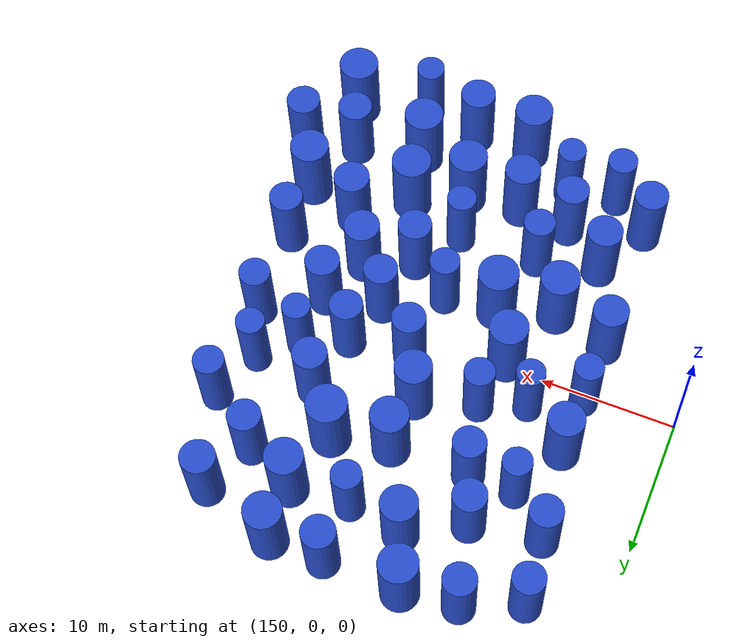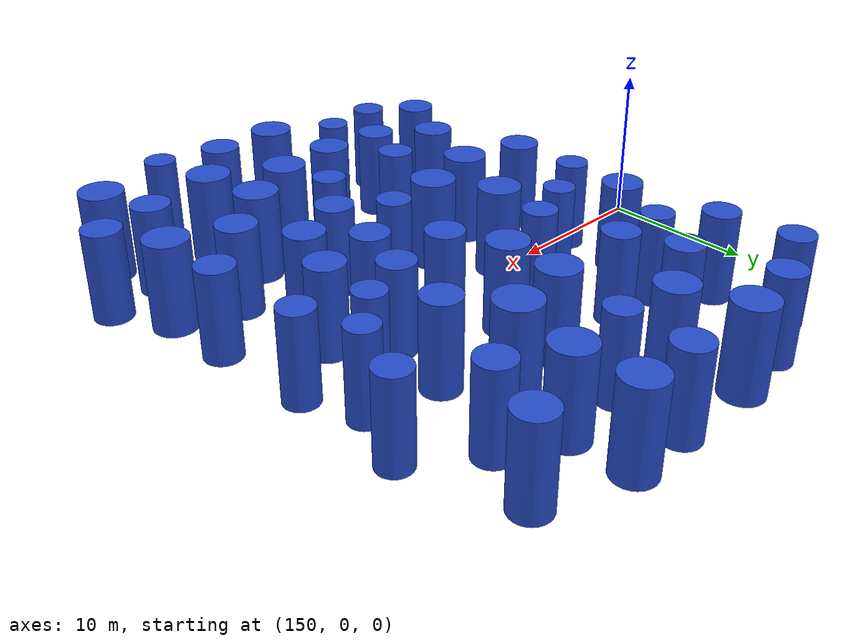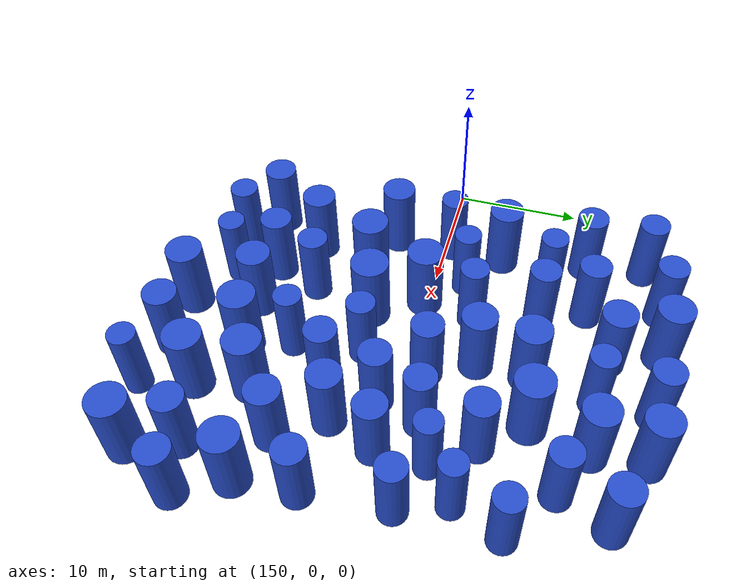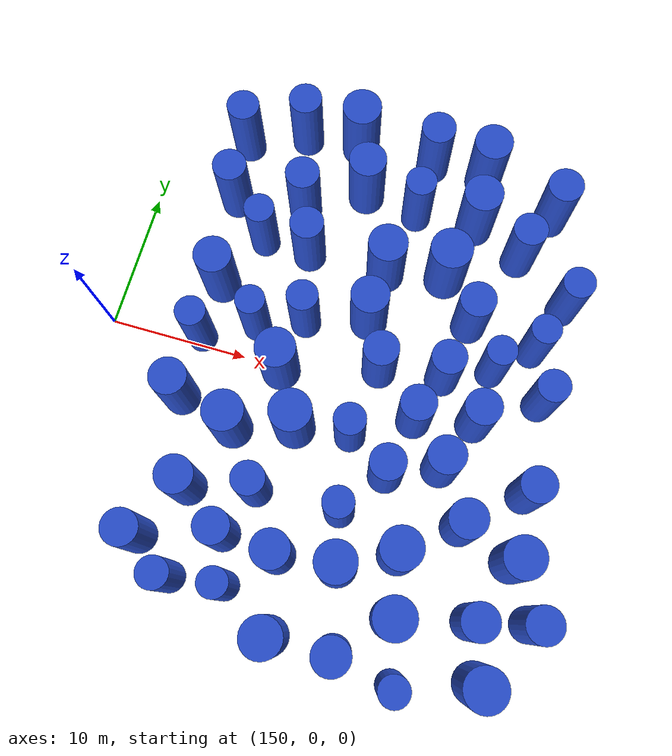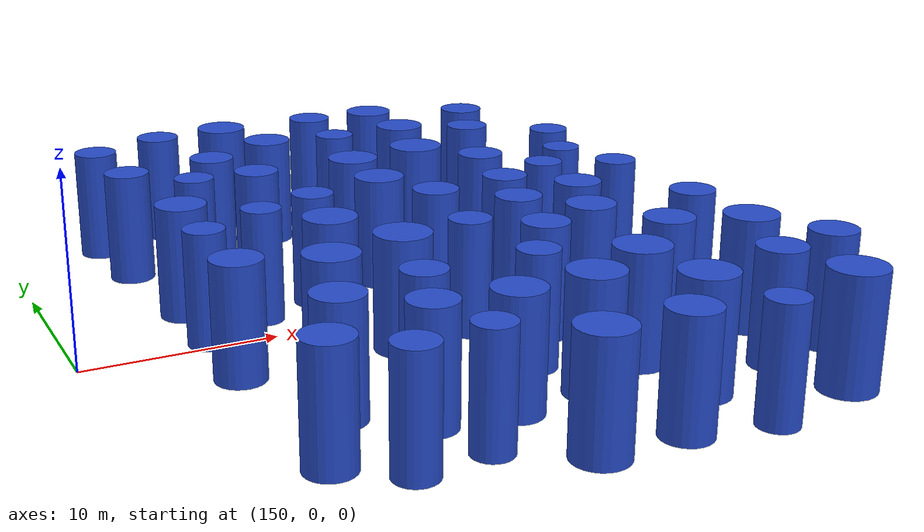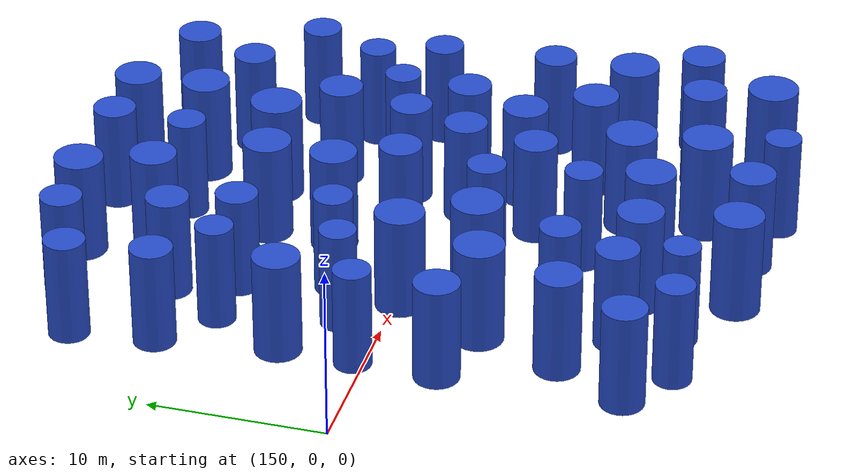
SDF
<sdf version="1.7">
 <world name="default">
  <model name="8">
   <static>1</static>
   <link name="link">
    <inertial>
     <mass>2</mass>
     <inertia><ixx>6.98352</ixx><ixy>0</ixy><ixz>0</ixz><iyy>6.98352</iyy><iyz>0</iyz><izz>1.96705</izz></inertia>
    </inertial>
    <collision name="collision">
     <geometry><cylinder><length>6</length><radius>1.40251</radius></cylinder></geometry>
     <surface><contact><collide_without_contact>1</collide_without_contact></contact></surface>
    </collision>
    <visual name="visual">
     <geometry><cylinder><length>6</length><radius>1.40251</radius></cylinder></geometry>
     <material>
      <script><uri>file://media/materials/scripts/gazebo.material</uri><name>Gazebo/Blue</name></script>
     </material>
    </visual>
    <gravity>0</gravity>
   </link>
   <pose>167.473 -18.0752 3 0 -0 0</pose>
  </model>
  <model name="13">
   <static>1</static>
   <link name="link">
    <inertial>
     <mass>2</mass>
     <inertia><ixx>6.67283</ixx><ixy>0</ixy><ixz>0</ixz><iyy>6.67283</iyy><iyz>0</iyz><izz>1.34566</izz></inertia>
    </inertial>
    <collision name="collision">
     <geometry><cylinder><length>6</length><radius>1.16003</radius></cylinder></geometry>
     <surface><contact><collide_without_contact>1</collide_without_contact></contact></surface>
    </collision>
    <visual name="visual">
     <geometry><cylinder><length>6</length><radius>1.16003</radius></cylinder></geometry>
     <material>
      <script><uri>file://media/materials/scripts/gazebo.material</uri><name>Gazebo/Blue</name></script>
     </material>
    </visual>
    <gravity>0</gravity>
   </link>
   <pose>155.364 16.3092 3 0 -0 0</pose>
  </model>
  <model name="16">
   <static>1</static>
   <link name="link">
    <inertial>
     <mass>2</mass>
     <inertia><ixx>6.74725</ixx><ixy>0</ixy><ixz>0</ixz><iyy>6.74725</iyy><iyz>0</iyz><izz>1.49449</izz></inertia>
    </inertial>
    <collision name="collision">
     <geometry><cylinder><length>6</length><radius>1.22249</radius></cylinder></geometry>
     <surface><contact><collide_without_contact>1</collide_without_contact></contact></surface>
    </collision>
    <visual name="visual">
     <geometry><cylinder><length>6</length><radius>1.22249</radius></cylinder></geometry>
     <material>
      <script><uri>file://media/materials/scripts/gazebo.material</uri><name>Gazebo/Blue</name></script>
     </material>
    </visual>
    <gravity>0</gravity>
   </link>
   <pose>181.651 -4.32254 3 0 -0 0</pose>
  </model>
  <model name="20">
   <static>1</static>
   <link name="link">
    <inertial>
     <mass>2</mass>
     <inertia><ixx>7.06805</ixx><ixy>0</ixy><ixz>0</ixz><iyy>7.06805</iyy><iyz>0</iyz><izz>2.1361</izz></inertia>
    </inertial>
    <collision name="collision">
     <geometry><cylinder><length>6</length><radius>1.46154</radius></cylinder></geometry>
     <surface><contact><collide_without_contact>1</collide_without_contact></contact></surface>
    </collision>
    <visual name="visual">
     <geometry><cylinder><length>6</length><radius>1.46154</radius></cylinder></geometry>
     <material>
      <script><uri>file://media/materials/scripts/gazebo.material</uri><name>Gazebo/Blue</name></script>
     </material>
    </visual>
    <gravity>0</gravity>
   </link>
   <pose>165.061 -4.03041 3 0 -0 0</pose>
  </model>
  <model name="28">
   <static>1</static>
   <link name="link">
    <inertial>
     <mass>2</mass>
     <inertia><ixx>6.84912</ixx><ixy>0</ixy><ixz>0</ixz><iyy>6.84912</iyy><iyz>0</iyz><izz>1.69825</izz></inertia>
    </inertial>
    <collision name="collision">
     <geometry><cylinder><length>6</length><radius>1.30317</radius></cylinder></geometry>
     <surface><contact><collide_without_contact>1</collide_without_contact></contact></surface>
    </collision>
    <visual name="visual">
     <geometry><cylinder><length>6</length><radius>1.30317</radius></cylinder></geometry>
     <material>
      <script><uri>file://media/materials/scripts/gazebo.material</uri><name>Gazebo/Blue</name></script>
     </material>
    </visual>
    <gravity>0</gravity>
   </link>
   <pose>175.588 -4.06808 3 0 -0 0</pose>
  </model>
  <model name="67">
   <static>1</static>
   <link name="link">
    <inertial>
     <mass>2</mass>
     <inertia><ixx>6.59382</ixx><ixy>0</ixy><ixz>0</ixz><iyy>6.59382</iyy><iyz>0</iyz><izz>1.18765</izz></inertia>
    </inertial>
    <collision name="collision">
     <geometry><cylinder><length>6</length><radius>1.08979</radius></cylinder></geometry>
     <surface><contact><collide_without_contact>1</collide_without_contact></contact></surface>
    </collision>
    <visual name="visual">
     <geometry><cylinder><length>6</length><radius>1.08979</radius></cylinder></geometry>
     <material>
      <script><uri>file://media/materials/scripts/gazebo.material</uri><name>Gazebo/Blue</name></script>
     </material>
    </visual>
    <gravity>0</gravity>
   </link>
   <pose>159.865 -16.2301 3 0 -0 0</pose>
  </model>
  <model name="89">
   <static>1</static>
   <link name="link">
    <inertial>
     <mass>2</mass>
     <inertia><ixx>6.78438</ixx><ixy>0</ixy><ixz>0</ixz><iyy>6.78438</iyy><iyz>0</iyz><izz>1.56876</izz></inertia>
    </inertial>
    <collision name="collision">
     <geometry><cylinder><length>6</length><radius>1.2525</radius></cylinder></geometry>
     <surface><contact><collide_without_contact>1</collide_without_contact></contact></surface>
    </collision>
    <visual name="visual">
     <geometry><cylinder><length>6</length><radius>1.2525</radius></cylinder></geometry>
     <material>
      <script><uri>file://media/materials/scripts/gazebo.material</uri><name>Gazebo/Blue</name></script>
     </material>
    </visual>
    <gravity>0</gravity>
   </link>
   <pose>174.977 6.69553 3 0 -0 0</pose>
  </model>
  <model name="91">
   <static>1</static>
   <link name="link">
    <inertial>
     <mass>2</mass>
     <inertia><ixx>6.60836</ixx><ixy>0</ixy><ixz>0</ixz><iyy>6.60836</iyy><iyz>0</iyz><izz>1.21672</izz></inertia>
    </inertial>
    <collision name="collision">
     <geometry><cylinder><length>6</length><radius>1.10305</radius></cylinder></geometry>
     <surface><contact><collide_without_contact>1</collide_without_contact></contact></surface>
    </collision>
    <visual name="visual">
     <geometry><cylinder><length>6</length><radius>1.10305</radius></cylinder></geometry>
     <material>
      <script><uri>file://media/materials/scripts/gazebo.material</uri><name>Gazebo/Blue</name></script>
     </material>
    </visual>
    <gravity>0</gravity>
   </link>
   <pose>163.547 3.72702 3 0 -0 0</pose>
  </model>
  <model name="106">
   <static>1</static>
   <link name="link">
    <inertial>
     <mass>2</mass>
     <inertia><ixx>7.05203</ixx><ixy>0</ixy><ixz>0</ixz><iyy>7.05203</iyy><iyz>0</iyz><izz>2.10405</izz></inertia>
    </inertial>
    <collision name="collision">
     <geometry><cylinder><length>6</length><radius>1.45054</radius></cylinder></geometry>
     <surface><contact><collide_without_contact>1</collide_without_contact></contact></surface>
    </collision>
    <visual name="visual">
     <geometry><cylinder><length>6</length><radius>1.45054</radius></cylinder></geometry>
     <material>
      <script><uri>file://media/materials/scripts/gazebo.material</uri><name>Gazebo/Blue</name></script>
     </material>
    </visual>
    <gravity>0</gravity>
   </link>
   <pose>174.331 -10.5369 3 0 -0 0</pose>
  </model>
  <model name="119">
   <static>1</static>
   <link name="link">
    <inertial>
     <mass>2</mass>
     <inertia><ixx>6.94866</ixx><ixy>0</ixy><ixz>0</ixz><iyy>6.94866</iyy><iyz>0</iyz><izz>1.89731</izz></inertia>
    </inertial>
    <collision name="collision">
     <geometry><cylinder><length>6</length><radius>1.37743</radius></cylinder></geometry>
     <surface><contact><collide_without_contact>1</collide_without_contact></contact></surface>
    </collision>
    <visual name="visual">
     <geometry><cylinder><length>6</length><radius>1.37743</radius></cylinder></geometry>
     <material>
      <script><uri>file://media/materials/scripts/gazebo.material</uri><name>Gazebo/Blue</name></script>
     </material>
    </visual>
    <gravity>0</gravity>
   </link>
   <pose>168.093 8.97157 3 0 -0 0</pose>
  </model>
  <model name="126">
   <static>1</static>
   <link name="link">
    <inertial>
     <mass>2</mass>
     <inertia><ixx>6.8639</ixx><ixy>0</ixy><ixz>0</ixz><iyy>6.8639</iyy><iyz>0</iyz><izz>1.72781</izz></inertia>
    </inertial>
    <collision name="collision">
     <geometry><cylinder><length>6</length><radius>1.31446</radius></cylinder></geometry>
     <surface><contact><collide_without_contact>1</collide_without_contact></contact></surface>
    </collision>
    <visual name="visual">
     <geometry><cylinder><length>6</length><radius>1.31446</radius></cylinder></geometry>
     <material>
      <script><uri>file://media/materials/scripts/gazebo.material</uri><name>Gazebo/Blue</name></script>
     </material>
    </visual>
    <gravity>0</gravity>
   </link>
   <pose>166.444 -12.8474 3 0 -0 0</pose>
  </model>
  <model name="130">
   <static>1</static>
   <link name="link">
    <inertial>
     <mass>2</mass>
     <inertia><ixx>7.05762</ixx><ixy>0</ixy><ixz>0</ixz><iyy>7.05762</iyy><iyz>0</iyz><izz>2.11524</izz></inertia>
    </inertial>
    <collision name="collision">
     <geometry><cylinder><length>6</length><radius>1.45439</radius></cylinder></geometry>
     <surface><contact><collide_without_contact>1</collide_without_contact></contact></surface>
    </collision>
    <visual name="visual">
     <geometry><cylinder><length>6</length><radius>1.45439</radius></cylinder></geometry>
     <material>
      <script><uri>file://media/materials/scripts/gazebo.material</uri><name>Gazebo/Blue</name></script>
     </material>
    </visual>
    <gravity>0</gravity>
   </link>
   <pose>181.345 -17.2307 3 0 -0 0</pose>
  </model>
  <model name="133">
   <static>1</static>
   <link name="link">
    <inertial>
     <mass>2</mass>
     <inertia><ixx>6.7937</ixx><ixy>0</ixy><ixz>0</ixz><iyy>6.7937</iyy><iyz>0</iyz><izz>1.58739</izz></inertia>
    </inertial>
    <collision name="collision">
     <geometry><cylinder><length>6</length><radius>1.25992</radius></cylinder></geometry>
     <surface><contact><collide_without_contact>1</collide_without_contact></contact></surface>
    </collision>
    <visual name="visual">
     <geometry><cylinder><length>6</length><radius>1.25992</radius></cylinder></geometry>
     <material>
      <script><uri>file://media/materials/scripts/gazebo.material</uri><name>Gazebo/Blue</name></script>
     </material>
    </visual>
    <gravity>0</gravity>
   </link>
   <pose>180.089 -13.5104 3 0 -0 0</pose>
  </model>
  <model name="145">
   <static>1</static>
   <link name="link">
    <inertial>
     <mass>2</mass>
     <inertia><ixx>6.79136</ixx><ixy>0</ixy><ixz>0</ixz><iyy>6.79136</iyy><iyz>0</iyz><izz>1.58272</izz></inertia>
    </inertial>
    <collision name="collision">
     <geometry><cylinder><length>6</length><radius>1.25806</radius></cylinder></geometry>
     <surface><contact><collide_without_contact>1</collide_without_contact></contact></surface>
    </collision>
    <visual name="visual">
     <geometry><cylinder><length>6</length><radius>1.25806</radius></cylinder></geometry>
     <material>
      <script><uri>file://media/materials/scripts/gazebo.material</uri><name>Gazebo/Blue</name></script>
     </material>
    </visual>
    <gravity>0</gravity>
   </link>
   <pose>177.084 -0.367265 3 0 -0 0</pose>
  </model>
  <model name="158">
   <static>1</static>
   <link name="link">
    <inertial>
     <mass>2</mass>
     <inertia><ixx>6.65932</ixx><ixy>0</ixy><ixz>0</ixz><iyy>6.65932</iyy><iyz>0</iyz><izz>1.31864</izz></inertia>
    </inertial>
    <collision name="collision">
     <geometry><cylinder><length>6</length><radius>1.14832</radius></cylinder></geometry>
     <surface><contact><collide_without_contact>1</collide_without_contact></contact></surface>
    </collision>
    <visual name="visual">
     <geometry><cylinder><length>6</length><radius>1.14832</radius></cylinder></geometry>
     <material>
      <script><uri>file://media/materials/scripts/gazebo.material</uri><name>Gazebo/Blue</name></script>
     </material>
    </visual>
    <gravity>0</gravity>
   </link>
   <pose>163.766 -9.01156 3 0 -0 0</pose>
  </model>
  <model name="169">
   <static>1</static>
   <link name="link">
    <inertial>
     <mass>2</mass>
     <inertia><ixx>7.0039</ixx><ixy>0</ixy><ixz>0</ixz><iyy>7.0039</iyy><iyz>0</iyz><izz>2.0078</izz></inertia>
    </inertial>
    <collision name="collision">
     <geometry><cylinder><length>6</length><radius>1.41697</radius></cylinder></geometry>
     <surface><contact><collide_without_contact>1</collide_without_contact></contact></surface>
    </collision>
    <visual name="visual">
     <geometry><cylinder><length>6</length><radius>1.41697</radius></cylinder></geometry>
     <material>
      <script><uri>file://media/materials/scripts/gazebo.material</uri><name>Gazebo/Blue</name></script>
     </material>
    </visual>
    <gravity>0</gravity>
   </link>
   <pose>160.856 -5.25476 3 0 -0 0</pose>
  </model>
  <model name="177">
   <static>1</static>
   <link name="link">
    <inertial>
     <mass>2</mass>
     <inertia><ixx>6.70964</ixx><ixy>0</ixy><ixz>0</ixz><iyy>6.70964</iyy><iyz>0</iyz><izz>1.41928</izz></inertia>
    </inertial>
    <collision name="collision">
     <geometry><cylinder><length>6</length><radius>1.19133</radius></cylinder></geometry>
     <surface><contact><collide_without_contact>1</collide_without_contact></contact></surface>
    </collision>
    <visual name="visual">
     <geometry><cylinder><length>6</length><radius>1.19133</radius></cylinder></geometry>
     <material>
      <script><uri>file://media/materials/scripts/gazebo.material</uri><name>Gazebo/Blue</name></script>
     </material>
    </visual>
    <gravity>0</gravity>
   </link>
   <pose>162.326 8.86403 3 0 -0 0</pose>
  </model>
  <model name="198">
   <static>1</static>
   <link name="link">
    <inertial>
     <mass>2</mass>
     <inertia><ixx>6.73733</ixx><ixy>0</ixy><ixz>0</ixz><iyy>6.73733</iyy><iyz>0</iyz><izz>1.47465</izz></inertia>
    </inertial>
    <collision name="collision">
     <geometry><cylinder><length>6</length><radius>1.21435</radius></cylinder></geometry>
     <surface><contact><collide_without_contact>1</collide_without_contact></contact></surface>
    </collision>
    <visual name="visual">
     <geometry><cylinder><length>6</length><radius>1.21435</radius></cylinder></geometry>
     <material>
      <script><uri>file://media/materials/scripts/gazebo.material</uri><name>Gazebo/Blue</name></script>
     </material>
    </visual>
    <gravity>0</gravity>
   </link>
   <pose>169.235 18.4133 3 0 -0 0</pose>
  </model>
  <model name="213">
   <static>1</static>
   <link name="link">
    <inertial>
     <mass>2</mass>
     <inertia><ixx>6.75563</ixx><ixy>0</ixy><ixz>0</ixz><iyy>6.75563</iyy><iyz>0</iyz><izz>1.51127</izz></inertia>
    </inertial>
    <collision name="collision">
     <geometry><cylinder><length>6</length><radius>1.22934</radius></cylinder></geometry>
     <surface><contact><collide_without_contact>1</collide_without_contact></contact></surface>
    </collision>
    <visual name="visual">
     <geometry><cylinder><length>6</length><radius>1.22934</radius></cylinder></geometry>
     <material>
      <script><uri>file://media/materials/scripts/gazebo.material</uri><name>Gazebo/Blue</name></script>
     </material>
    </visual>
    <gravity>0</gravity>
   </link>
   <pose>169.639 1.6309 3 0 -0 0</pose>
  </model>
  <model name="217">
   <static>1</static>
   <link name="link">
    <inertial>
     <mass>2</mass>
     <inertia><ixx>6.59246</ixx><ixy>0</ixy><ixz>0</ixz><iyy>6.59246</iyy><iyz>0</iyz><izz>1.18493</izz></inertia>
    </inertial>
    <collision name="collision">
     <geometry><cylinder><length>6</length><radius>1.08854</radius></cylinder></geometry>
     <surface><contact><collide_without_contact>1</collide_without_contact></contact></surface>
    </collision>
    <visual name="visual">
     <geometry><cylinder><length>6</length><radius>1.08854</radius></cylinder></geometry>
     <material>
      <script><uri>file://media/materials/scripts/gazebo.material</uri><name>Gazebo/Blue</name></script>
     </material>
    </visual>
    <gravity>0</gravity>
   </link>
   <pose>169.098 14.0574 3 0 -0 0</pose>
  </model>
  <model name="228">
   <static>1</static>
   <link name="link">
    <inertial>
     <mass>2</mass>
     <inertia><ixx>6.71691</ixx><ixy>0</ixy><ixz>0</ixz><iyy>6.71691</iyy><iyz>0</iyz><izz>1.43381</izz></inertia>
    </inertial>
    <collision name="collision">
     <geometry><cylinder><length>6</length><radius>1.19742</radius></cylinder></geometry>
     <surface><contact><collide_without_contact>1</collide_without_contact></contact></surface>
    </collision>
    <visual name="visual">
     <geometry><cylinder><length>6</length><radius>1.19742</radius></cylinder></geometry>
     <material>
      <script><uri>file://media/materials/scripts/gazebo.material</uri><name>Gazebo/Blue</name></script>
     </material>
    </visual>
    <gravity>0</gravity>
   </link>
   <pose>177.218 12.6196 3 0 -0 0</pose>
  </model>
  <model name="232">
   <static>1</static>
   <link name="link">
    <inertial>
     <mass>2</mass>
     <inertia><ixx>6.86479</ixx><ixy>0</ixy><ixz>0</ixz><iyy>6.86479</iyy><iyz>0</iyz><izz>1.72958</izz></inertia>
    </inertial>
    <collision name="collision">
     <geometry><cylinder><length>6</length><radius>1.31513</radius></cylinder></geometry>
     <surface><contact><collide_without_contact>1</collide_without_contact></contact></surface>
    </collision>
    <visual name="visual">
     <geometry><cylinder><length>6</length><radius>1.31513</radius></cylinder></geometry>
     <material>
      <script><uri>file://media/materials/scripts/gazebo.material</uri><name>Gazebo/Blue</name></script>
     </material>
    </visual>
    <gravity>0</gravity>
   </link>
   <pose>177.884 -7.62183 3 0 -0 0</pose>
  </model>
  <model name="244">
   <static>1</static>
   <link name="link">
    <inertial>
     <mass>2</mass>
     <inertia><ixx>6.5744</ixx><ixy>0</ixy><ixz>0</ixz><iyy>6.5744</iyy><iyz>0</iyz><izz>1.1488</izz></inertia>
    </inertial>
    <collision name="collision">
     <geometry><cylinder><length>6</length><radius>1.07182</radius></cylinder></geometry>
     <surface><contact><collide_without_contact>1</collide_without_contact></contact></surface>
    </collision>
    <visual name="visual">
     <geometry><cylinder><length>6</length><radius>1.07182</radius></cylinder></geometry>
     <material>
      <script><uri>file://media/materials/scripts/gazebo.material</uri><name>Gazebo/Blue</name></script>
     </material>
    </visual>
    <gravity>0</gravity>
   </link>
   <pose>169.722 -8.87631 3 0 -0 0</pose>
  </model>
  <model name="264">
   <static>1</static>
   <link name="link">
    <inertial>
     <mass>2</mass>
     <inertia><ixx>6.87498</ixx><ixy>0</ixy><ixz>0</ixz><iyy>6.87498</iyy><iyz>0</iyz><izz>1.74997</izz></inertia>
    </inertial>
    <collision name="collision">
     <geometry><cylinder><length>6</length><radius>1.32286</radius></cylinder></geometry>
     <surface><contact><collide_without_contact>1</collide_without_contact></contact></surface>
    </collision>
    <visual name="visual">
     <geometry><cylinder><length>6</length><radius>1.32286</radius></cylinder></geometry>
     <material>
      <script><uri>file://media/materials/scripts/gazebo.material</uri><name>Gazebo/Blue</name></script>
     </material>
    </visual>
    <gravity>0</gravity>
   </link>
   <pose>165.071 14.6475 3 0 -0 0</pose>
  </model>
  <model name="278">
   <static>1</static>
   <link name="link">
    <inertial>
     <mass>2</mass>
     <inertia><ixx>6.84315</ixx><ixy>0</ixy><ixz>0</ixz><iyy>6.84315</iyy><iyz>0</iyz><izz>1.6863</izz></inertia>
    </inertial>
    <collision name="collision">
     <geometry><cylinder><length>6</length><radius>1.29857</radius></cylinder></geometry>
     <surface><contact><collide_without_contact>1</collide_without_contact></contact></surface>
    </collision>
    <visual name="visual">
     <geometry><cylinder><length>6</length><radius>1.29857</radius></cylinder></geometry>
     <material>
      <script><uri>file://media/materials/scripts/gazebo.material</uri><name>Gazebo/Blue</name></script>
     </material>
    </visual>
    <gravity>0</gravity>
   </link>
   <pose>159.163 -10.0609 3 0 -0 0</pose>
  </model>
  <model name="282">
   <static>1</static>
   <link name="link">
    <inertial>
     <mass>2</mass>
     <inertia><ixx>6.97651</ixx><ixy>0</ixy><ixz>0</ixz><iyy>6.97651</iyy><iyz>0</iyz><izz>1.95302</izz></inertia>
    </inertial>
    <collision name="collision">
     <geometry><cylinder><length>6</length><radius>1.39751</radius></cylinder></geometry>
     <surface><contact><collide_without_contact>1</collide_without_contact></contact></surface>
    </collision>
    <visual name="visual">
     <geometry><cylinder><length>6</length><radius>1.39751</radius></cylinder></geometry>
     <material>
      <script><uri>file://media/materials/scripts/gazebo.material</uri><name>Gazebo/Blue</name></script>
     </material>
    </visual>
    <gravity>0</gravity>
   </link>
   <pose>162.873 -0.253651 3 0 -0 0</pose>
  </model>
  <model name="284">
   <static>1</static>
   <link name="link">
    <inertial>
     <mass>2</mass>
     <inertia><ixx>6.71815</ixx><ixy>0</ixy><ixz>0</ixz><iyy>6.71815</iyy><iyz>0</iyz><izz>1.43629</izz></inertia>
    </inertial>
    <collision name="collision">
     <geometry><cylinder><length>6</length><radius>1.19845</radius></cylinder></geometry>
     <surface><contact><collide_without_contact>1</collide_without_contact></contact></surface>
    </collision>
    <visual name="visual">
     <geometry><cylinder><length>6</length><radius>1.19845</radius></cylinder></geometry>
     <material>
      <script><uri>file://media/materials/scripts/gazebo.material</uri><name>Gazebo/Blue</name></script>
     </material>
    </visual>
    <gravity>0</gravity>
   </link>
   <pose>155.874 11.5714 3 0 -0 0</pose>
  </model>
  <model name="290">
   <static>1</static>
   <link name="link">
    <inertial>
     <mass>2</mass>
     <inertia><ixx>6.78477</ixx><ixy>0</ixy><ixz>0</ixz><iyy>6.78477</iyy><iyz>0</iyz><izz>1.56955</izz></inertia>
    </inertial>
    <collision name="collision">
     <geometry><cylinder><length>6</length><radius>1.25282</radius></cylinder></geometry>
     <surface><contact><collide_without_contact>1</collide_without_contact></contact></surface>
    </collision>
    <visual name="visual">
     <geometry><cylinder><length>6</length><radius>1.25282</radius></cylinder></geometry>
     <material>
      <script><uri>file://media/materials/scripts/gazebo.material</uri><name>Gazebo/Blue</name></script>
     </material>
    </visual>
    <gravity>0</gravity>
   </link>
   <pose>178.823 16.5191 3 0 -0 0</pose>
  </model>
  <model name="299">
   <static>1</static>
   <link name="link">
    <inertial>
     <mass>2</mass>
     <inertia><ixx>6.53178</ixx><ixy>0</ixy><ixz>0</ixz><iyy>6.53178</iyy><iyz>0</iyz><izz>1.06355</izz></inertia>
    </inertial>
    <collision name="collision">
     <geometry><cylinder><length>6</length><radius>1.03129</radius></cylinder></geometry>
     <surface><contact><collide_without_contact>1</collide_without_contact></contact></surface>
    </collision>
    <visual name="visual">
     <geometry><cylinder><length>6</length><radius>1.03129</radius></cylinder></geometry>
     <material>
      <script><uri>file://media/materials/scripts/gazebo.material</uri><name>Gazebo/Blue</name></script>
     </material>
    </visual>
    <gravity>0</gravity>
   </link>
   <pose>163.637 -15.7684 3 0 -0 0</pose>
  </model>
  <model name="301">
   <static>1</static>
   <link name="link">
    <inertial>
     <mass>2</mass>
     <inertia><ixx>6.5377</ixx><ixy>0</ixy><ixz>0</ixz><iyy>6.5377</iyy><iyz>0</iyz><izz>1.0754</izz></inertia>
    </inertial>
    <collision name="collision">
     <geometry><cylinder><length>6</length><radius>1.03701</radius></cylinder></geometry>
     <surface><contact><collide_without_contact>1</collide_without_contact></contact></surface>
    </collision>
    <visual name="visual">
     <geometry><cylinder><length>6</length><radius>1.03701</radius></cylinder></geometry>
     <material>
      <script><uri>file://media/materials/scripts/gazebo.material</uri><name>Gazebo/Blue</name></script>
     </material>
    </visual>
    <gravity>0</gravity>
   </link>
   <pose>160.257 2.47621 3 0 -0 0</pose>
  </model>
  <model name="309">
   <static>1</static>
   <link name="link">
    <inertial>
     <mass>2</mass>
     <inertia><ixx>6.83101</ixx><ixy>0</ixy><ixz>0</ixz><iyy>6.83101</iyy><iyz>0</iyz><izz>1.66203</izz></inertia>
    </inertial>
    <collision name="collision">
     <geometry><cylinder><length>6</length><radius>1.2892</radius></cylinder></geometry>
     <surface><contact><collide_without_contact>1</collide_without_contact></contact></surface>
    </collision>
    <visual name="visual">
     <geometry><cylinder><length>6</length><radius>1.2892</radius></cylinder></geometry>
     <material>
      <script><uri>file://media/materials/scripts/gazebo.material</uri><name>Gazebo/Blue</name></script>
     </material>
    </visual>
    <gravity>0</gravity>
   </link>
   <pose>156.688 -4.06244 3 0 -0 0</pose>
  </model>
  <model name="313">
   <static>1</static>
   <link name="link">
    <inertial>
     <mass>2</mass>
     <inertia><ixx>6.77921</ixx><ixy>0</ixy><ixz>0</ixz><iyy>6.77921</iyy><iyz>0</iyz><izz>1.55842</izz></inertia>
    </inertial>
    <collision name="collision">
     <geometry><cylinder><length>6</length><radius>1.24837</radius></cylinder></geometry>
     <surface><contact><collide_without_contact>1</collide_without_contact></contact></surface>
    </collision>
    <visual name="visual">
     <geometry><cylinder><length>6</length><radius>1.24837</radius></cylinder></geometry>
     <material>
      <script><uri>file://media/materials/scripts/gazebo.material</uri><name>Gazebo/Blue</name></script>
     </material>
    </visual>
    <gravity>0</gravity>
   </link>
   <pose>183.916 -12.6178 3 0 -0 0</pose>
  </model>
  <model name="316">
   <static>1</static>
   <link name="link">
    <inertial>
     <mass>2</mass>
     <inertia><ixx>6.83368</ixx><ixy>0</ixy><ixz>0</ixz><iyy>6.83368</iyy><iyz>0</iyz><izz>1.66736</izz></inertia>
    </inertial>
    <collision name="collision">
     <geometry><cylinder><length>6</length><radius>1.29126</radius></cylinder></geometry>
     <surface><contact><collide_without_contact>1</collide_without_contact></contact></surface>
    </collision>
    <visual name="visual">
     <geometry><cylinder><length>6</length><radius>1.29126</radius></cylinder></geometry>
     <material>
      <script><uri>file://media/materials/scripts/gazebo.material</uri><name>Gazebo/Blue</name></script>
     </material>
    </visual>
    <gravity>0</gravity>
   </link>
   <pose>171.89 -17.953 3 0 -0 0</pose>
  </model>
  <model name="318">
   <static>1</static>
   <link name="link">
    <inertial>
     <mass>2</mass>
     <inertia><ixx>6.53999</ixx><ixy>0</ixy><ixz>0</ixz><iyy>6.53999</iyy><iyz>0</iyz><izz>1.07998</izz></inertia>
    </inertial>
    <collision name="collision">
     <geometry><cylinder><length>6</length><radius>1.03922</radius></cylinder></geometry>
     <surface><contact><collide_without_contact>1</collide_without_contact></contact></surface>
    </collision>
    <visual name="visual">
     <geometry><cylinder><length>6</length><radius>1.03922</radius></cylinder></geometry>
     <material>
      <script><uri>file://media/materials/scripts/gazebo.material</uri><name>Gazebo/Blue</name></script>
     </material>
    </visual>
    <gravity>0</gravity>
   </link>
   <pose>176.084 -18.8328 3 0 -0 0</pose>
  </model>
  <model name="328">
   <static>1</static>
   <link name="link">
    <inertial>
     <mass>2</mass>
     <inertia><ixx>6.73438</ixx><ixy>0</ixy><ixz>0</ixz><iyy>6.73438</iyy><iyz>0</iyz><izz>1.46876</izz></inertia>
    </inertial>
    <collision name="collision">
     <geometry><cylinder><length>6</length><radius>1.21192</radius></cylinder></geometry>
     <surface><contact><collide_without_contact>1</collide_without_contact></contact></surface>
    </collision>
    <visual name="visual">
     <geometry><cylinder><length>6</length><radius>1.21192</radius></cylinder></geometry>
     <material>
      <script><uri>file://media/materials/scripts/gazebo.material</uri><name>Gazebo/Blue</name></script>
     </material>
    </visual>
    <gravity>0</gravity>
   </link>
   <pose>160.95 12.4038 3 0 -0 0</pose>
  </model>
  <model name="340">
   <static>1</static>
   <link name="link">
    <inertial>
     <mass>2</mass>
     <inertia><ixx>6.72609</ixx><ixy>0</ixy><ixz>0</ixz><iyy>6.72609</iyy><iyz>0</iyz><izz>1.45219</izz></inertia>
    </inertial>
    <collision name="collision">
     <geometry><cylinder><length>6</length><radius>1.20507</radius></cylinder></geometry>
     <surface><contact><collide_without_contact>1</collide_without_contact></contact></surface>
    </collision>
    <visual name="visual">
     <geometry><cylinder><length>6</length><radius>1.20507</radius></cylinder></geometry>
     <material>
      <script><uri>file://media/materials/scripts/gazebo.material</uri><name>Gazebo/Blue</name></script>
     </material>
    </visual>
    <gravity>0</gravity>
   </link>
   <pose>174.112 2.28238 3 0 -0 0</pose>
  </model>
  <model name="342">
   <static>1</static>
   <link name="link">
    <inertial>
     <mass>2</mass>
     <inertia><ixx>6.63647</ixx><ixy>0</ixy><ixz>0</ixz><iyy>6.63647</iyy><iyz>0</iyz><izz>1.27294</izz></inertia>
    </inertial>
    <collision name="collision">
     <geometry><cylinder><length>6</length><radius>1.12825</radius></cylinder></geometry>
     <surface><contact><collide_without_contact>1</collide_without_contact></contact></surface>
    </collision>
    <visual name="visual">
     <geometry><cylinder><length>6</length><radius>1.12825</radius></cylinder></geometry>
     <material>
      <script><uri>file://media/materials/scripts/gazebo.material</uri><name>Gazebo/Blue</name></script>
     </material>
    </visual>
    <gravity>0</gravity>
   </link>
   <pose>181.162 2.25508 3 0 -0 0</pose>
  </model>
  <model name="359">
   <static>1</static>
   <link name="link">
    <inertial>
     <mass>2</mass>
     <inertia><ixx>6.56237</ixx><ixy>0</ixy><ixz>0</ixz><iyy>6.56237</iyy><iyz>0</iyz><izz>1.12474</izz></inertia>
    </inertial>
    <collision name="collision">
     <geometry><cylinder><length>6</length><radius>1.06054</radius></cylinder></geometry>
     <surface><contact><collide_without_contact>1</collide_without_contact></contact></surface>
    </collision>
    <visual name="visual">
     <geometry><cylinder><length>6</length><radius>1.06054</radius></cylinder></geometry>
     <material>
      <script><uri>file://media/materials/scripts/gazebo.material</uri><name>Gazebo/Blue</name></script>
     </material>
    </visual>
    <gravity>0</gravity>
   </link>
   <pose>158.848 9.0032 3 0 -0 0</pose>
  </model>
  <model name="360">
   <static>1</static>
   <link name="link">
    <inertial>
     <mass>2</mass>
     <inertia><ixx>6.93736</ixx><ixy>0</ixy><ixz>0</ixz><iyy>6.93736</iyy><iyz>0</iyz><izz>1.87473</izz></inertia>
    </inertial>
    <collision name="collision">
     <geometry><cylinder><length>6</length><radius>1.36921</radius></cylinder></geometry>
     <surface><contact><collide_without_contact>1</collide_without_contact></contact></surface>
    </collision>
    <visual name="visual">
     <geometry><cylinder><length>6</length><radius>1.36921</radius></cylinder></geometry>
     <material>
      <script><uri>file://media/materials/scripts/gazebo.material</uri><name>Gazebo/Blue</name></script>
     </material>
    </visual>
    <gravity>0</gravity>
   </link>
   <pose>173.5 14.381 3 0 -0 0</pose>
  </model>
  <model name="365">
   <static>1</static>
   <link name="link">
    <inertial>
     <mass>2</mass>
     <inertia><ixx>6.76493</ixx><ixy>0</ixy><ixz>0</ixz><iyy>6.76493</iyy><iyz>0</iyz><izz>1.52987</izz></inertia>
    </inertial>
    <collision name="collision">
     <geometry><cylinder><length>6</length><radius>1.23688</radius></cylinder></geometry>
     <surface><contact><collide_without_contact>1</collide_without_contact></contact></surface>
    </collision>
    <visual name="visual">
     <geometry><cylinder><length>6</length><radius>1.23688</radius></cylinder></geometry>
     <material>
      <script><uri>file://media/materials/scripts/gazebo.material</uri><name>Gazebo/Blue</name></script>
     </material>
    </visual>
    <gravity>0</gravity>
   </link>
   <pose>172.067 -5.54983 3 0 -0 0</pose>
  </model>
  <model name="368">
   <static>1</static>
   <link name="link">
    <inertial>
     <mass>2</mass>
     <inertia><ixx>6.87841</ixx><ixy>0</ixy><ixz>0</ixz><iyy>6.87841</iyy><iyz>0</iyz><izz>1.75683</izz></inertia>
    </inertial>
    <collision name="collision">
     <geometry><cylinder><length>6</length><radius>1.32545</radius></cylinder></geometry>
     <surface><contact><collide_without_contact>1</collide_without_contact></contact></surface>
    </collision>
    <visual name="visual">
     <geometry><cylinder><length>6</length><radius>1.32545</radius></cylinder></geometry>
     <material>
      <script><uri>file://media/materials/scripts/gazebo.material</uri><name>Gazebo/Blue</name></script>
     </material>
    </visual>
    <gravity>0</gravity>
   </link>
   <pose>156.836 4.86502 3 0 -0 0</pose>
  </model>
  <model name="378">
   <static>1</static>
   <link name="link">
    <inertial>
     <mass>2</mass>
     <inertia><ixx>7.08628</ixx><ixy>0</ixy><ixz>0</ixz><iyy>7.08628</iyy><iyz>0</iyz><izz>2.17255</izz></inertia>
    </inertial>
    <collision name="collision">
     <geometry><cylinder><length>6</length><radius>1.47396</radius></cylinder></geometry>
     <surface><contact><collide_without_contact>1</collide_without_contact></contact></surface>
    </collision>
    <visual name="visual">
     <geometry><cylinder><length>6</length><radius>1.47396</radius></cylinder></geometry>
     <material>
      <script><uri>file://media/materials/scripts/gazebo.material</uri><name>Gazebo/Blue</name></script>
     </material>
    </visual>
    <gravity>0</gravity>
   </link>
   <pose>172.379 9.77806 3 0 -0 0</pose>
  </model>
  <model name="381">
   <static>1</static>
   <link name="link">
    <inertial>
     <mass>2</mass>
     <inertia><ixx>6.62279</ixx><ixy>0</ixy><ixz>0</ixz><iyy>6.62279</iyy><iyz>0</iyz><izz>1.24558</izz></inertia>
    </inertial>
    <collision name="collision">
     <geometry><cylinder><length>6</length><radius>1.11605</radius></cylinder></geometry>
     <surface><contact><collide_without_contact>1</collide_without_contact></contact></surface>
    </collision>
    <visual name="visual">
     <geometry><cylinder><length>6</length><radius>1.11605</radius></cylinder></geometry>
     <material>
      <script><uri>file://media/materials/scripts/gazebo.material</uri><name>Gazebo/Blue</name></script>
     </material>
    </visual>
    <gravity>0</gravity>
   </link>
   <pose>181.236 9.72283 3 0 -0 0</pose>
  </model>
  <model name="399">
   <static>1</static>
   <link name="link">
    <inertial>
     <mass>2</mass>
     <inertia><ixx>7.01045</ixx><ixy>0</ixy><ixz>0</ixz><iyy>7.01045</iyy><iyz>0</iyz><izz>2.0209</izz></inertia>
    </inertial>
    <collision name="collision">
     <geometry><cylinder><length>6</length><radius>1.42158</radius></cylinder></geometry>
     <surface><contact><collide_without_contact>1</collide_without_contact></contact></surface>
    </collision>
    <visual name="visual">
     <geometry><cylinder><length>6</length><radius>1.42158</radius></cylinder></geometry>
     <material>
      <script><uri>file://media/materials/scripts/gazebo.material</uri><name>Gazebo/Blue</name></script>
     </material>
    </visual>
    <gravity>0</gravity>
   </link>
   <pose>170.596 -12.4778 3 0 -0 0</pose>
  </model>
  <model name="402">
   <static>1</static>
   <link name="link">
    <inertial>
     <mass>2</mass>
     <inertia><ixx>6.54084</ixx><ixy>0</ixy><ixz>0</ixz><iyy>6.54084</iyy><iyz>0</iyz><izz>1.08168</izz></inertia>
    </inertial>
    <collision name="collision">
     <geometry><cylinder><length>6</length><radius>1.04004</radius></cylinder></geometry>
     <surface><contact><collide_without_contact>1</collide_without_contact></contact></surface>
    </collision>
    <visual name="visual">
     <geometry><cylinder><length>6</length><radius>1.04004</radius></cylinder></geometry>
     <material>
      <script><uri>file://media/materials/scripts/gazebo.material</uri><name>Gazebo/Blue</name></script>
     </material>
    </visual>
    <gravity>0</gravity>
   </link>
   <pose>179.833 5.9189 3 0 -0 0</pose>
  </model>
  <model name="428">
   <static>1</static>
   <link name="link">
    <inertial>
     <mass>2</mass>
     <inertia><ixx>6.69725</ixx><ixy>0</ixy><ixz>0</ixz><iyy>6.69725</iyy><iyz>0</iyz><izz>1.39451</izz></inertia>
    </inertial>
    <collision name="collision">
     <geometry><cylinder><length>6</length><radius>1.18089</radius></cylinder></geometry>
     <surface><contact><collide_without_contact>1</collide_without_contact></contact></surface>
    </collision>
    <visual name="visual">
     <geometry><cylinder><length>6</length><radius>1.18089</radius></cylinder></geometry>
     <material>
      <script><uri>file://media/materials/scripts/gazebo.material</uri><name>Gazebo/Blue</name></script>
     </material>
    </visual>
    <gravity>0</gravity>
   </link>
   <pose>159.49 18.0317 3 0 -0 0</pose>
  </model>
  <model name="441">
   <static>1</static>
   <link name="link">
    <inertial>
     <mass>2</mass>
     <inertia><ixx>7.01396</ixx><ixy>0</ixy><ixz>0</ixz><iyy>7.01396</iyy><iyz>0</iyz><izz>2.02792</izz></inertia>
    </inertial>
    <collision name="collision">
     <geometry><cylinder><length>6</length><radius>1.42405</radius></cylinder></geometry>
     <surface><contact><collide_without_contact>1</collide_without_contact></contact></surface>
    </collision>
    <visual name="visual">
     <geometry><cylinder><length>6</length><radius>1.42405</radius></cylinder></geometry>
     <material>
      <script><uri>file://media/materials/scripts/gazebo.material</uri><name>Gazebo/Blue</name></script>
     </material>
    </visual>
    <gravity>0</gravity>
   </link>
   <pose>181.838 -8.98361 3 0 -0 0</pose>
  </model>
  <model name="454">
   <static>1</static>
   <link name="link">
    <inertial>
     <mass>2</mass>
     <inertia><ixx>6.55789</ixx><ixy>0</ixy><ixz>0</ixz><iyy>6.55789</iyy><iyz>0</iyz><izz>1.11578</izz></inertia>
    </inertial>
    <collision name="collision">
     <geometry><cylinder><length>6</length><radius>1.0563</radius></cylinder></geometry>
     <surface><contact><collide_without_contact>1</collide_without_contact></contact></surface>
    </collision>
    <visual name="visual">
     <geometry><cylinder><length>6</length><radius>1.0563</radius></cylinder></geometry>
     <material>
      <script><uri>file://media/materials/scripts/gazebo.material</uri><name>Gazebo/Blue</name></script>
     </material>
    </visual>
    <gravity>0</gravity>
   </link>
   <pose>156.672 0.607327 3 0 -0 0</pose>
  </model>
  <model name="459">
   <static>1</static>
   <link name="link">
    <inertial>
     <mass>2</mass>
     <inertia><ixx>6.89775</ixx><ixy>0</ixy><ixz>0</ixz><iyy>6.89775</iyy><iyz>0</iyz><izz>1.79551</izz></inertia>
    </inertial>
    <collision name="collision">
     <geometry><cylinder><length>6</length><radius>1.33997</radius></cylinder></geometry>
     <surface><contact><collide_without_contact>1</collide_without_contact></contact></surface>
    </collision>
    <visual name="visual">
     <geometry><cylinder><length>6</length><radius>1.33997</radius></cylinder></geometry>
     <material>
      <script><uri>file://media/materials/scripts/gazebo.material</uri><name>Gazebo/Blue</name></script>
     </material>
    </visual>
    <gravity>0</gravity>
   </link>
   <pose>167.928 5.04205 3 0 -0 0</pose>
  </model>
  <model name="461">
   <static>1</static>
   <link name="link">
    <inertial>
     <mass>2</mass>
     <inertia><ixx>6.97039</ixx><ixy>0</ixy><ixz>0</ixz><iyy>6.97039</iyy><iyz>0</iyz><izz>1.94077</izz></inertia>
    </inertial>
    <collision name="collision">
     <geometry><cylinder><length>6</length><radius>1.39312</radius></cylinder></geometry>
     <surface><contact><collide_without_contact>1</collide_without_contact></contact></surface>
    </collision>
    <visual name="visual">
     <geometry><cylinder><length>6</length><radius>1.39312</radius></cylinder></geometry>
     <material>
      <script><uri>file://media/materials/scripts/gazebo.material</uri><name>Gazebo/Blue</name></script>
     </material>
    </visual>
    <gravity>0</gravity>
   </link>
   <pose>163.566 18.502 3 0 -0 0</pose>
  </model>
  <model name="490">
   <static>1</static>
   <link name="link">
    <inertial>
     <mass>2</mass>
     <inertia><ixx>6.60622</ixx><ixy>0</ixy><ixz>0</ixz><iyy>6.60622</iyy><iyz>0</iyz><izz>1.21245</izz></inertia>
    </inertial>
    <collision name="collision">
     <geometry><cylinder><length>6</length><radius>1.10111</radius></cylinder></geometry>
     <surface><contact><collide_without_contact>1</collide_without_contact></contact></surface>
    </collision>
    <visual name="visual">
     <geometry><cylinder><length>6</length><radius>1.10111</radius></cylinder></geometry>
     <material>
      <script><uri>file://media/materials/scripts/gazebo.material</uri><name>Gazebo/Blue</name></script>
     </material>
    </visual>
    <gravity>0</gravity>
   </link>
   <pose>168.954 -3.53428 3 0 -0 0</pose>
  </model>
  <model name="497">
   <static>1</static>
   <link name="link">
    <inertial>
     <mass>2</mass>
     <inertia><ixx>6.77271</ixx><ixy>0</ixy><ixz>0</ixz><iyy>6.77271</iyy><iyz>0</iyz><izz>1.54543</izz></inertia>
    </inertial>
    <collision name="collision">
     <geometry><cylinder><length>6</length><radius>1.24315</radius></cylinder></geometry>
     <surface><contact><collide_without_contact>1</collide_without_contact></contact></surface>
    </collision>
    <visual name="visual">
     <geometry><cylinder><length>6</length><radius>1.24315</radius></cylinder></geometry>
     <material>
      <script><uri>file://media/materials/scripts/gazebo.material</uri><name>Gazebo/Blue</name></script>
     </material>
    </visual>
    <gravity>0</gravity>
   </link>
   <pose>156.978 -14.1583 3 0 -0 0</pose>
  </model>
  <model name="516">
   <static>1</static>
   <link name="link">
    <inertial>
     <mass>2</mass>
     <inertia><ixx>6.74379</ixx><ixy>0</ixy><ixz>0</ixz><iyy>6.74379</iyy><iyz>0</iyz><izz>1.48758</izz></inertia>
    </inertial>
    <collision name="collision">
     <geometry><cylinder><length>6</length><radius>1.21966</radius></cylinder></geometry>
     <surface><contact><collide_without_contact>1</collide_without_contact></contact></surface>
    </collision>
    <visual name="visual">
     <geometry><cylinder><length>6</length><radius>1.21966</radius></cylinder></geometry>
     <material>
      <script><uri>file://media/materials/scripts/gazebo.material</uri><name>Gazebo/Blue</name></script>
     </material>
    </visual>
    <gravity>0</gravity>
   </link>
   <pose>162.468 -12.4968 3 0 -0 0</pose>
  </model>
  <model name="520">
   <static>1</static>
   <link name="link">
    <inertial>
     <mass>2</mass>
     <inertia><ixx>6.91655</ixx><ixy>0</ixy><ixz>0</ixz><iyy>6.91655</iyy><iyz>0</iyz><izz>1.83309</izz></inertia>
    </inertial>
    <collision name="collision">
     <geometry><cylinder><length>6</length><radius>1.35392</radius></cylinder></geometry>
     <surface><contact><collide_without_contact>1</collide_without_contact></contact></surface>
    </collision>
    <visual name="visual">
     <geometry><cylinder><length>6</length><radius>1.35392</radius></cylinder></geometry>
     <material>
      <script><uri>file://media/materials/scripts/gazebo.material</uri><name>Gazebo/Blue</name></script>
     </material>
    </visual>
    <gravity>0</gravity>
   </link>
   <pose>173.237 18.3952 3 0 -0 0</pose>
  </model>
  <model name="524">
   <static>1</static>
   <link name="link">
    <inertial>
     <mass>2</mass>
     <inertia><ixx>6.76101</ixx><ixy>0</ixy><ixz>0</ixz><iyy>6.76101</iyy><iyz>0</iyz><izz>1.52202</izz></inertia>
    </inertial>
    <collision name="collision">
     <geometry><cylinder><length>6</length><radius>1.2337</radius></cylinder></geometry>
     <surface><contact><collide_without_contact>1</collide_without_contact></contact></surface>
    </collision>
    <visual name="visual">
     <geometry><cylinder><length>6</length><radius>1.2337</radius></cylinder></geometry>
     <material>
      <script><uri>file://media/materials/scripts/gazebo.material</uri><name>Gazebo/Blue</name></script>
     </material>
    </visual>
    <gravity>0</gravity>
   </link>
   <pose>172.958 -1.2558 3 0 -0 0</pose>
  </model>
  <model name="541">
   <static>1</static>
   <link name="link">
    <inertial>
     <mass>2</mass>
     <inertia><ixx>6.5405</ixx><ixy>0</ixy><ixz>0</ixz><iyy>6.5405</iyy><iyz>0</iyz><izz>1.081</izz></inertia>
    </inertial>
    <collision name="collision">
     <geometry><cylinder><length>6</length><radius>1.03971</radius></cylinder></geometry>
     <surface><contact><collide_without_contact>1</collide_without_contact></contact></surface>
    </collision>
    <visual name="visual">
     <geometry><cylinder><length>6</length><radius>1.03971</radius></cylinder></geometry>
     <material>
      <script><uri>file://media/materials/scripts/gazebo.material</uri><name>Gazebo/Blue</name></script>
     </material>
    </visual>
    <gravity>0</gravity>
   </link>
   <pose>177.335 3.6682 3 0 -0 0</pose>
  </model>
  <model name="542">
   <static>1</static>
   <link name="link">
    <inertial>
     <mass>2</mass>
     <inertia><ixx>7.03723</ixx><ixy>0</ixy><ixz>0</ixz><iyy>7.03723</iyy><iyz>0</iyz><izz>2.07446</izz></inertia>
    </inertial>
    <collision name="collision">
     <geometry><cylinder><length>6</length><radius>1.4403</radius></cylinder></geometry>
     <surface><contact><collide_without_contact>1</collide_without_contact></contact></surface>
    </collision>
    <visual name="visual">
     <geometry><cylinder><length>6</length><radius>1.4403</radius></cylinder></geometry>
     <material>
      <script><uri>file://media/materials/scripts/gazebo.material</uri><name>Gazebo/Blue</name></script>
     </material>
    </visual>
    <gravity>0</gravity>
   </link>
   <pose>175.021 -14.7438 3 0 -0 0</pose>
  </model>
 </world>
</sdf>
